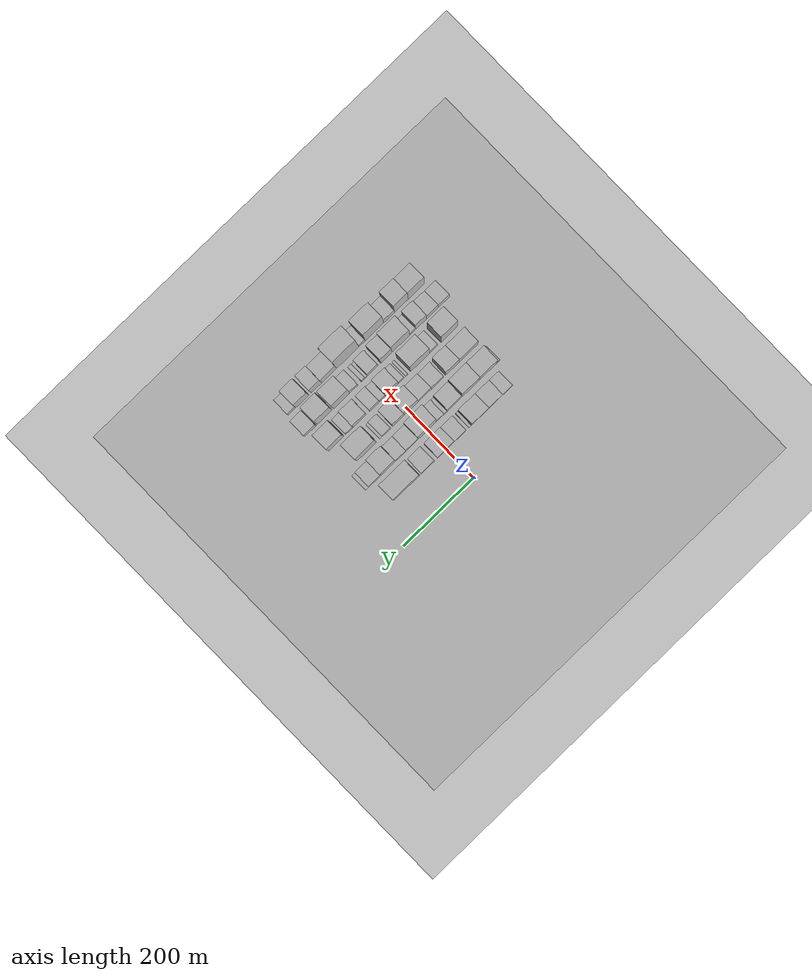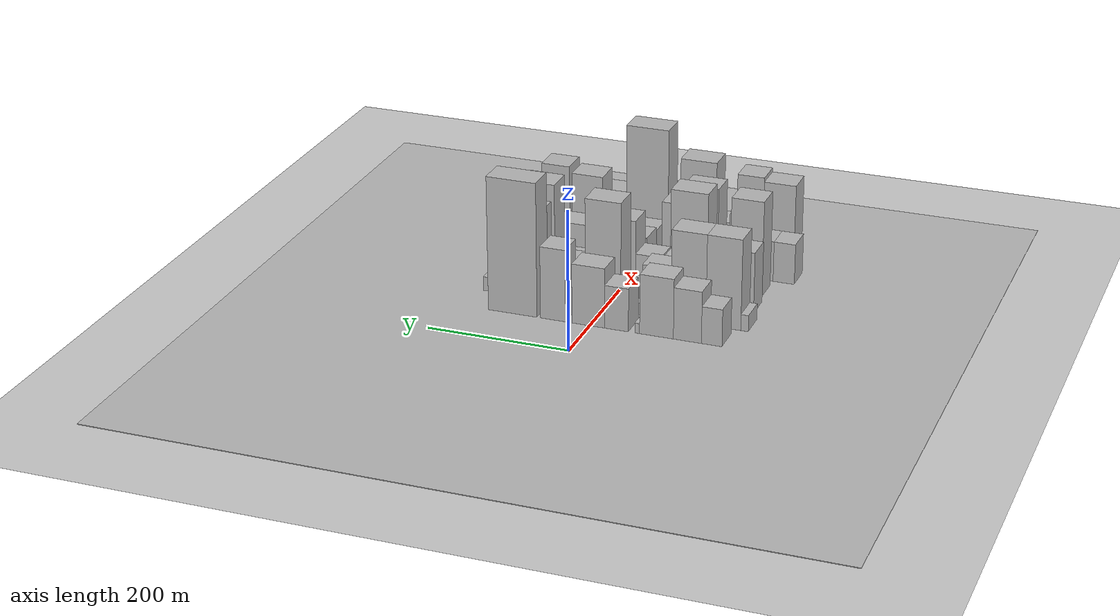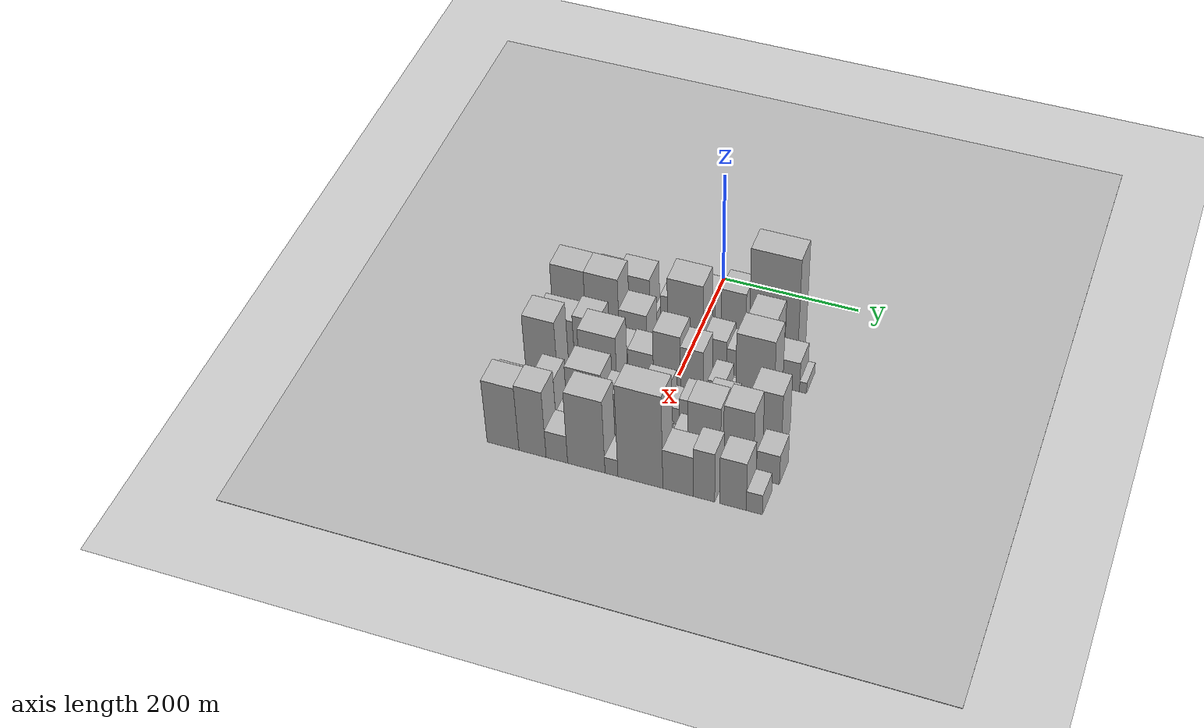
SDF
<sdf version="1.6">
 <world name="default">
  <include><name>ground_plane_1</name><uri>model://HANNAS_ground_plane</uri></include>
  <include>
   <name>ground_plane_2</name>
   <uri>model://HANNAS_ground_plane</uri>
   <pose>100 0 0  0 0 0</pose>
  </include>
  <model name="building_20">
   <static>1</static>
   <pose>100.0000 -170.7618 0 0.000000 0.000000 0.000000</pose>
   <link name="link">
    <pose>0 0 27.00 0 0 0</pose>
    <collision name="collision"><geometry><box><size>40.0000 28.4199 54.0000</size></box></geometry></collision>
    <visual name="visual">
     <cast_shadows>0</cast_shadows>
     <geometry><box><size>40.0000 28.4199 54.0000</size></box></geometry>
     <material>
      <script>
       <uri>model://HANNAS_wall/materials/scripts</uri>
       <uri>model://HANNAS_wall/materials/textures</uri>
       <name>vrc/HANNAS_wall</name>
      </script>
     </material>
    </visual>
   </link>
  </model>
  <model name="building_21">
   <static>1</static>
   <pose>100.0000 -137.1133 0 0.000000 0.000000 0.000000</pose>
   <link name="link">
    <pose>0 0 37.50 0 0 0</pose>
    <collision name="collision"><geometry><box><size>40.0000 38.8770 75.0000</size></box></geometry></collision>
    <visual name="visual">
     <cast_shadows>0</cast_shadows>
     <geometry><box><size>40.0000 38.8770 75.0000</size></box></geometry>
     <material>
      <script>
       <uri>model://HANNAS_wall/materials/scripts</uri>
       <uri>model://HANNAS_wall/materials/textures</uri>
       <name>vrc/HANNAS_wall</name>
      </script>
     </material>
    </visual>
   </link>
  </model>
  <model name="building_22">
   <static>1</static>
   <pose>100.0000 -93.9730 0 0.000000 0.000000 0.000000</pose>
   <link name="link">
    <pose>0 0 43.50 0 0 0</pose>
    <collision name="collision"><geometry><box><size>40.0000 47.4036 87.0000</size></box></geometry></collision>
    <visual name="visual">
     <cast_shadows>0</cast_shadows>
     <geometry><box><size>40.0000 47.4036 87.0000</size></box></geometry>
     <material>
      <script>
       <uri>model://HANNAS_wall/materials/scripts</uri>
       <uri>model://HANNAS_wall/materials/textures</uri>
       <name>vrc/HANNAS_wall</name>
      </script>
     </material>
    </visual>
   </link>
  </model>
  <model name="building_23">
   <static>1</static>
   <pose>100.0000 -66.9445 0 0.000000 0.000000 0.000000</pose>
   <link name="link">
    <pose>0 0 7.50 0 0 0</pose>
    <collision name="collision"><geometry><box><size>40.0000 6.6534 15.0000</size></box></geometry></collision>
    <visual name="visual">
     <cast_shadows>0</cast_shadows>
     <geometry><box><size>40.0000 6.6534 15.0000</size></box></geometry>
     <material>
      <script>
       <uri>model://HANNAS_wall/materials/scripts</uri>
       <uri>model://HANNAS_wall/materials/textures</uri>
       <name>vrc/HANNAS_wall</name>
      </script>
     </material>
    </visual>
   </link>
  </model>
  <model name="building_24">
   <static>1</static>
   <pose>100.0000 -37.7825 0 0.000000 0.000000 0.000000</pose>
   <link name="link">
    <pose>0 0 31.50 0 0 0</pose>
    <collision name="collision"><geometry><box><size>40.0000 33.6706 63.0000</size></box></geometry></collision>
    <visual name="visual">
     <cast_shadows>0</cast_shadows>
     <geometry><box><size>40.0000 33.6706 63.0000</size></box></geometry>
     <material>
      <script>
       <uri>model://HANNAS_wall/materials/scripts</uri>
       <uri>model://HANNAS_wall/materials/textures</uri>
       <name>vrc/HANNAS_wall</name>
      </script>
     </material>
    </visual>
   </link>
  </model>
  <model name="building_25">
   <static>1</static>
   <pose>100.0000 2.3220 0 0.000000 0.000000 0.000000</pose>
   <link name="link">
    <pose>0 0 43.50 0 0 0</pose>
    <collision name="collision"><geometry><box><size>40.0000 46.5383 87.0000</size></box></geometry></collision>
    <visual name="visual">
     <cast_shadows>0</cast_shadows>
     <geometry><box><size>40.0000 46.5383 87.0000</size></box></geometry>
     <material>
      <script>
       <uri>model://HANNAS_wall/materials/scripts</uri>
       <uri>model://HANNAS_wall/materials/textures</uri>
       <name>vrc/HANNAS_wall</name>
      </script>
     </material>
    </visual>
   </link>
  </model>
  <model name="building_26">
   <static>1</static>
   <pose>100.0000 52.6891 0 0.000000 0.000000 0.000000</pose>
   <link name="link">
    <pose>0 0 52.50 0 0 0</pose>
    <collision name="collision"><geometry><box><size>40.0000 36.1959 105.0000</size></box></geometry></collision>
    <visual name="visual">
     <cast_shadows>0</cast_shadows>
     <geometry><box><size>40.0000 36.1959 105.0000</size></box></geometry>
     <material>
      <script>
       <uri>model://HANNAS_wall/materials/scripts</uri>
       <uri>model://HANNAS_wall/materials/textures</uri>
       <name>vrc/HANNAS_wall</name>
      </script>
     </material>
    </visual>
   </link>
  </model>
  <model name="building_27">
   <static>1</static>
   <pose>100.0000 111.0224 0 0.000000 0.000000 0.000000</pose>
   <link name="link">
    <pose>0 0 97.50 0 0 0</pose>
    <collision name="collision"><geometry><box><size>40.0000 70.4707 195.0000</size></box></geometry></collision>
    <visual name="visual">
     <cast_shadows>0</cast_shadows>
     <geometry><box><size>40.0000 70.4707 195.0000</size></box></geometry>
     <material>
      <script>
       <uri>model://HANNAS_wall/materials/scripts</uri>
       <uri>model://HANNAS_wall/materials/textures</uri>
       <name>vrc/HANNAS_wall</name>
      </script>
     </material>
    </visual>
   </link>
  </model>
  <model name="building_75">
   <static>1</static>
   <pose>155.0000 -199.0048 0 0.000000 0.000000 0.000000</pose>
   <link name="link">
    <pose>0 0 12.00 0 0 0</pose>
    <collision name="collision"><geometry><box><size>40.0000 10.4964 24.0000</size></box></geometry></collision>
    <visual name="visual">
     <cast_shadows>0</cast_shadows>
     <geometry><box><size>40.0000 10.4964 24.0000</size></box></geometry>
     <material>
      <script>
       <uri>model://HANNAS_wall/materials/scripts</uri>
       <uri>model://HANNAS_wall/materials/textures</uri>
       <name>vrc/HANNAS_wall</name>
      </script>
     </material>
    </visual>
   </link>
  </model>
  <model name="building_76">
   <static>1</static>
   <pose>155.0000 -169.3473 0 0.000000 0.000000 0.000000</pose>
   <link name="link">
    <pose>0 0 66.00 0 0 0</pose>
    <collision name="collision"><geometry><box><size>40.0000 48.8188 132.0000</size></box></geometry></collision>
    <visual name="visual">
     <cast_shadows>0</cast_shadows>
     <geometry><box><size>40.0000 48.8188 132.0000</size></box></geometry>
     <material>
      <script>
       <uri>model://HANNAS_wall/materials/scripts</uri>
       <uri>model://HANNAS_wall/materials/textures</uri>
       <name>vrc/HANNAS_wall</name>
      </script>
     </material>
    </visual>
   </link>
  </model>
  <model name="building_77">
   <static>1</static>
   <pose>155.0000 -120.2626 0 0.000000 0.000000 0.000000</pose>
   <link name="link">
    <pose>0 0 66.00 0 0 0</pose>
    <collision name="collision"><geometry><box><size>40.0000 49.3506 132.0000</size></box></geometry></collision>
    <visual name="visual">
     <cast_shadows>0</cast_shadows>
     <geometry><box><size>40.0000 49.3506 132.0000</size></box></geometry>
     <material>
      <script>
       <uri>model://HANNAS_wall/materials/scripts</uri>
       <uri>model://HANNAS_wall/materials/textures</uri>
       <name>vrc/HANNAS_wall</name>
      </script>
     </material>
    </visual>
   </link>
  </model>
  <model name="building_78">
   <static>1</static>
   <pose>155.0000 -75.1745 0 0.000000 0.000000 0.000000</pose>
   <link name="link">
    <pose>0 0 37.50 0 0 0</pose>
    <collision name="collision"><geometry><box><size>40.0000 40.8256 75.0000</size></box></geometry></collision>
    <visual name="visual">
     <cast_shadows>0</cast_shadows>
     <geometry><box><size>40.0000 40.8256 75.0000</size></box></geometry>
     <material>
      <script>
       <uri>model://HANNAS_wall/materials/scripts</uri>
       <uri>model://HANNAS_wall/materials/textures</uri>
       <name>vrc/HANNAS_wall</name>
      </script>
     </material>
    </visual>
   </link>
  </model>
  <model name="building_79">
   <static>1</static>
   <pose>155.0000 -50.3389 0 0.000000 0.000000 0.000000</pose>
   <link name="link">
    <pose>0 0 9.00 0 0 0</pose>
    <collision name="collision"><geometry><box><size>40.0000 8.8457 18.0000</size></box></geometry></collision>
    <visual name="visual">
     <cast_shadows>0</cast_shadows>
     <geometry><box><size>40.0000 8.8457 18.0000</size></box></geometry>
     <material>
      <script>
       <uri>model://HANNAS_wall/materials/scripts</uri>
       <uri>model://HANNAS_wall/materials/textures</uri>
       <name>vrc/HANNAS_wall</name>
      </script>
     </material>
    </visual>
   </link>
  </model>
  <model name="building_80">
   <static>1</static>
   <pose>155.0000 -35.0040 0 0.000000 0.000000 0.000000</pose>
   <link name="link">
    <pose>0 0 19.50 0 0 0</pose>
    <collision name="collision"><geometry><box><size>40.0000 21.8240 39.0000</size></box></geometry></collision>
    <visual name="visual">
     <cast_shadows>0</cast_shadows>
     <geometry><box><size>40.0000 21.8240 39.0000</size></box></geometry>
     <material>
      <script>
       <uri>model://HANNAS_wall/materials/scripts</uri>
       <uri>model://HANNAS_wall/materials/textures</uri>
       <name>vrc/HANNAS_wall</name>
      </script>
     </material>
    </visual>
   </link>
  </model>
  <model name="building_81">
   <static>1</static>
   <pose>155.0000 1.4963 0 0.000000 0.000000 0.000000</pose>
   <link name="link">
    <pose>0 0 79.50 0 0 0</pose>
    <collision name="collision"><geometry><box><size>40.0000 51.1767 159.0000</size></box></geometry></collision>
    <visual name="visual">
     <cast_shadows>0</cast_shadows>
     <geometry><box><size>40.0000 51.1767 159.0000</size></box></geometry>
     <material>
      <script>
       <uri>model://HANNAS_wall/materials/scripts</uri>
       <uri>model://HANNAS_wall/materials/textures</uri>
       <name>vrc/HANNAS_wall</name>
      </script>
     </material>
    </visual>
   </link>
  </model>
  <model name="building_82">
   <static>1</static>
   <pose>155.0000 44.1281 0 0.000000 0.000000 0.000000</pose>
   <link name="link">
    <pose>0 0 31.50 0 0 0</pose>
    <collision name="collision"><geometry><box><size>40.0000 34.0868 63.0000</size></box></geometry></collision>
    <visual name="visual">
     <cast_shadows>0</cast_shadows>
     <geometry><box><size>40.0000 34.0868 63.0000</size></box></geometry>
     <material>
      <script>
       <uri>model://HANNAS_wall/materials/scripts</uri>
       <uri>model://HANNAS_wall/materials/textures</uri>
       <name>vrc/HANNAS_wall</name>
      </script>
     </material>
    </visual>
   </link>
  </model>
  <model name="building_83">
   <static>1</static>
   <pose>155.0000 75.9721 0 0.000000 0.000000 0.000000</pose>
   <link name="link">
    <pose>0 0 25.50 0 0 0</pose>
    <collision name="collision"><geometry><box><size>40.0000 29.6012 51.0000</size></box></geometry></collision>
    <visual name="visual">
     <cast_shadows>0</cast_shadows>
     <geometry><box><size>40.0000 29.6012 51.0000</size></box></geometry>
     <material>
      <script>
       <uri>model://HANNAS_wall/materials/scripts</uri>
       <uri>model://HANNAS_wall/materials/textures</uri>
       <name>vrc/HANNAS_wall</name>
      </script>
     </material>
    </visual>
   </link>
  </model>
  <model name="building_84">
   <static>1</static>
   <pose>155.0000 111.1873 0 0.000000 0.000000 0.000000</pose>
   <link name="link">
    <pose>0 0 64.50 0 0 0</pose>
    <collision name="collision"><geometry><box><size>40.0000 40.8293 129.0000</size></box></geometry></collision>
    <visual name="visual">
     <cast_shadows>0</cast_shadows>
     <geometry><box><size>40.0000 40.8293 129.0000</size></box></geometry>
     <material>
      <script>
       <uri>model://HANNAS_wall/materials/scripts</uri>
       <uri>model://HANNAS_wall/materials/textures</uri>
       <name>vrc/HANNAS_wall</name>
      </script>
     </material>
    </visual>
   </link>
  </model>
  <model name="building_85">
   <static>1</static>
   <pose>155.0000 148.7007 0 0.000000 0.000000 0.000000</pose>
   <link name="link">
    <pose>0 0 28.50 0 0 0</pose>
    <collision name="collision"><geometry><box><size>40.0000 34.1975 57.0000</size></box></geometry></collision>
    <visual name="visual">
     <cast_shadows>0</cast_shadows>
     <geometry><box><size>40.0000 34.1975 57.0000</size></box></geometry>
     <material>
      <script>
       <uri>model://HANNAS_wall/materials/scripts</uri>
       <uri>model://HANNAS_wall/materials/textures</uri>
       <name>vrc/HANNAS_wall</name>
      </script>
     </material>
    </visual>
   </link>
  </model>
  <model name="building_86">
   <static>1</static>
   <pose>155.0000 170.8605 0 0.000000 0.000000 0.000000</pose>
   <link name="link">
    <pose>0 0 10.50 0 0 0</pose>
    <collision name="collision"><geometry><box><size>40.0000 10.1222 21.0000</size></box></geometry></collision>
    <visual name="visual">
     <cast_shadows>0</cast_shadows>
     <geometry><box><size>40.0000 10.1222 21.0000</size></box></geometry>
     <material>
      <script>
       <uri>model://HANNAS_wall/materials/scripts</uri>
       <uri>model://HANNAS_wall/materials/textures</uri>
       <name>vrc/HANNAS_wall</name>
      </script>
     </material>
    </visual>
   </link>
  </model>
  <model name="building_126">
   <static>1</static>
   <pose>210.0000 -168.0021 0 0.000000 0.000000 0.000000</pose>
   <link name="link">
    <pose>0 0 45.00 0 0 0</pose>
    <collision name="collision"><geometry><box><size>40.0000 53.4722 90.0000</size></box></geometry></collision>
    <visual name="visual">
     <cast_shadows>0</cast_shadows>
     <geometry><box><size>40.0000 53.4722 90.0000</size></box></geometry>
     <material>
      <script>
       <uri>model://HANNAS_wall/materials/scripts</uri>
       <uri>model://HANNAS_wall/materials/textures</uri>
       <name>vrc/HANNAS_wall</name>
      </script>
     </material>
    </visual>
   </link>
  </model>
  <model name="building_127">
   <static>1</static>
   <pose>210.0000 -122.7780 0 0.000000 0.000000 0.000000</pose>
   <link name="link">
    <pose>0 0 51.00 0 0 0</pose>
    <collision name="collision"><geometry><box><size>40.0000 36.9761 102.0000</size></box></geometry></collision>
    <visual name="visual">
     <cast_shadows>0</cast_shadows>
     <geometry><box><size>40.0000 36.9761 102.0000</size></box></geometry>
     <material>
      <script>
       <uri>model://HANNAS_wall/materials/scripts</uri>
       <uri>model://HANNAS_wall/materials/textures</uri>
       <name>vrc/HANNAS_wall</name>
      </script>
     </material>
    </visual>
   </link>
  </model>
  <model name="building_128">
   <static>1</static>
   <pose>210.0000 -80.1163 0 0.000000 0.000000 0.000000</pose>
   <link name="link">
    <pose>0 0 30.00 0 0 0</pose>
    <collision name="collision"><geometry><box><size>40.0000 34.3472 60.0000</size></box></geometry></collision>
    <visual name="visual">
     <cast_shadows>0</cast_shadows>
     <geometry><box><size>40.0000 34.3472 60.0000</size></box></geometry>
     <material>
      <script>
       <uri>model://HANNAS_wall/materials/scripts</uri>
       <uri>model://HANNAS_wall/materials/textures</uri>
       <name>vrc/HANNAS_wall</name>
      </script>
     </material>
    </visual>
   </link>
  </model>
  <model name="building_129">
   <static>1</static>
   <pose>210.0000 -44.4161 0 0.000000 0.000000 0.000000</pose>
   <link name="link">
    <pose>0 0 31.50 0 0 0</pose>
    <collision name="collision"><geometry><box><size>40.0000 37.0533 63.0000</size></box></geometry></collision>
    <visual name="visual">
     <cast_shadows>0</cast_shadows>
     <geometry><box><size>40.0000 37.0533 63.0000</size></box></geometry>
     <material>
      <script>
       <uri>model://HANNAS_wall/materials/scripts</uri>
       <uri>model://HANNAS_wall/materials/textures</uri>
       <name>vrc/HANNAS_wall</name>
      </script>
     </material>
    </visual>
   </link>
  </model>
  <model name="building_130">
   <static>1</static>
   <pose>210.0000 -6.4415 0 0.000000 0.000000 0.000000</pose>
   <link name="link">
    <pose>0 0 55.50 0 0 0</pose>
    <collision name="collision"><geometry><box><size>40.0000 38.8958 111.0000</size></box></geometry></collision>
    <visual name="visual">
     <cast_shadows>0</cast_shadows>
     <geometry><box><size>40.0000 38.8958 111.0000</size></box></geometry>
     <material>
      <script>
       <uri>model://HANNAS_wall/materials/scripts</uri>
       <uri>model://HANNAS_wall/materials/textures</uri>
       <name>vrc/HANNAS_wall</name>
      </script>
     </material>
    </visual>
   </link>
  </model>
  <model name="building_131">
   <static>1</static>
   <pose>210.0000 29.5271 0 0.000000 0.000000 0.000000</pose>
   <link name="link">
    <pose>0 0 46.50 0 0 0</pose>
    <collision name="collision"><geometry><box><size>40.0000 33.0415 93.0000</size></box></geometry></collision>
    <visual name="visual">
     <cast_shadows>0</cast_shadows>
     <geometry><box><size>40.0000 33.0415 93.0000</size></box></geometry>
     <material>
      <script>
       <uri>model://HANNAS_wall/materials/scripts</uri>
       <uri>model://HANNAS_wall/materials/textures</uri>
       <name>vrc/HANNAS_wall</name>
      </script>
     </material>
    </visual>
   </link>
  </model>
  <model name="building_132">
   <static>1</static>
   <pose>210.0000 64.2577 0 0.000000 0.000000 0.000000</pose>
   <link name="link">
    <pose>0 0 21.00 0 0 0</pose>
    <collision name="collision"><geometry><box><size>40.0000 24.4197 42.0000</size></box></geometry></collision>
    <visual name="visual">
     <cast_shadows>0</cast_shadows>
     <geometry><box><size>40.0000 24.4197 42.0000</size></box></geometry>
     <material>
      <script>
       <uri>model://HANNAS_wall/materials/scripts</uri>
       <uri>model://HANNAS_wall/materials/textures</uri>
       <name>vrc/HANNAS_wall</name>
      </script>
     </material>
    </visual>
   </link>
  </model>
  <model name="building_133">
   <static>1</static>
   <pose>210.0000 79.6754 0 0.000000 0.000000 0.000000</pose>
   <link name="link">
    <pose>0 0 7.50 0 0 0</pose>
    <collision name="collision"><geometry><box><size>40.0000 6.4158 15.0000</size></box></geometry></collision>
    <visual name="visual">
     <cast_shadows>0</cast_shadows>
     <geometry><box><size>40.0000 6.4158 15.0000</size></box></geometry>
     <material>
      <script>
       <uri>model://HANNAS_wall/materials/scripts</uri>
       <uri>model://HANNAS_wall/materials/textures</uri>
       <name>vrc/HANNAS_wall</name>
      </script>
     </material>
    </visual>
   </link>
  </model>
  <model name="building_134">
   <static>1</static>
   <pose>210.0000 118.9408 0 0.000000 0.000000 0.000000</pose>
   <link name="link">
    <pose>0 0 73.50 0 0 0</pose>
    <collision name="collision"><geometry><box><size>40.0000 54.1151 147.0000</size></box></geometry></collision>
    <visual name="visual">
     <cast_shadows>0</cast_shadows>
     <geometry><box><size>40.0000 54.1151 147.0000</size></box></geometry>
     <material>
      <script>
       <uri>model://HANNAS_wall/materials/scripts</uri>
       <uri>model://HANNAS_wall/materials/textures</uri>
       <name>vrc/HANNAS_wall</name>
      </script>
     </material>
    </visual>
   </link>
  </model>
  <model name="building_179">
   <static>1</static>
   <pose>265.0000 -166.8526 0 0.000000 0.000000 0.000000</pose>
   <link name="link">
    <pose>0 0 70.50 0 0 0</pose>
    <collision name="collision"><geometry><box><size>40.0000 45.9384 141.0000</size></box></geometry></collision>
    <visual name="visual">
     <cast_shadows>0</cast_shadows>
     <geometry><box><size>40.0000 45.9384 141.0000</size></box></geometry>
     <material>
      <script>
       <uri>model://HANNAS_wall/materials/scripts</uri>
       <uri>model://HANNAS_wall/materials/textures</uri>
       <name>vrc/HANNAS_wall</name>
      </script>
     </material>
    </visual>
   </link>
  </model>
  <model name="building_180">
   <static>1</static>
   <pose>265.0000 -122.5112 0 0.000000 0.000000 0.000000</pose>
   <link name="link">
    <pose>0 0 21.00 0 0 0</pose>
    <collision name="collision"><geometry><box><size>40.0000 22.7444 42.0000</size></box></geometry></collision>
    <visual name="visual">
     <cast_shadows>0</cast_shadows>
     <geometry><box><size>40.0000 22.7444 42.0000</size></box></geometry>
     <material>
      <script>
       <uri>model://HANNAS_wall/materials/scripts</uri>
       <uri>model://HANNAS_wall/materials/textures</uri>
       <name>vrc/HANNAS_wall</name>
      </script>
     </material>
    </visual>
   </link>
  </model>
  <model name="building_181">
   <static>1</static>
   <pose>265.0000 -84.4028 0 0.000000 0.000000 0.000000</pose>
   <link name="link">
    <pose>0 0 70.50 0 0 0</pose>
    <collision name="collision"><geometry><box><size>40.0000 53.4723 141.0000</size></box></geometry></collision>
    <visual name="visual">
     <cast_shadows>0</cast_shadows>
     <geometry><box><size>40.0000 53.4723 141.0000</size></box></geometry>
     <material>
      <script>
       <uri>model://HANNAS_wall/materials/scripts</uri>
       <uri>model://HANNAS_wall/materials/textures</uri>
       <name>vrc/HANNAS_wall</name>
      </script>
     </material>
    </visual>
   </link>
  </model>
  <model name="building_182">
   <static>1</static>
   <pose>265.0000 -46.6549 0 0.000000 0.000000 0.000000</pose>
   <link name="link">
    <pose>0 0 7.50 0 0 0</pose>
    <collision name="collision"><geometry><box><size>40.0000 6.0235 15.0000</size></box></geometry></collision>
    <visual name="visual">
     <cast_shadows>0</cast_shadows>
     <geometry><box><size>40.0000 6.0235 15.0000</size></box></geometry>
     <material>
      <script>
       <uri>model://HANNAS_wall/materials/scripts</uri>
       <uri>model://HANNAS_wall/materials/textures</uri>
       <name>vrc/HANNAS_wall</name>
      </script>
     </material>
    </visual>
   </link>
  </model>
  <model name="building_183">
   <static>1</static>
   <pose>265.0000 -31.0385 0 0.000000 0.000000 0.000000</pose>
   <link name="link">
    <pose>0 0 15.00 0 0 0</pose>
    <collision name="collision"><geometry><box><size>40.0000 15.2093 30.0000</size></box></geometry></collision>
    <visual name="visual">
     <cast_shadows>0</cast_shadows>
     <geometry><box><size>40.0000 15.2093 30.0000</size></box></geometry>
     <material>
      <script>
       <uri>model://HANNAS_wall/materials/scripts</uri>
       <uri>model://HANNAS_wall/materials/textures</uri>
       <name>vrc/HANNAS_wall</name>
      </script>
     </material>
    </visual>
   </link>
  </model>
  <model name="building_184">
   <static>1</static>
   <pose>265.0000 -5.1891 0 0.000000 0.000000 0.000000</pose>
   <link name="link">
    <pose>0 0 31.50 0 0 0</pose>
    <collision name="collision"><geometry><box><size>40.0000 36.4895 63.0000</size></box></geometry></collision>
    <visual name="visual">
     <cast_shadows>0</cast_shadows>
     <geometry><box><size>40.0000 36.4895 63.0000</size></box></geometry>
     <material>
      <script>
       <uri>model://HANNAS_wall/materials/scripts</uri>
       <uri>model://HANNAS_wall/materials/textures</uri>
       <name>vrc/HANNAS_wall</name>
      </script>
     </material>
    </visual>
   </link>
  </model>
  <model name="building_185">
   <static>1</static>
   <pose>265.0000 21.7609 0 0.000000 0.000000 0.000000</pose>
   <link name="link">
    <pose>0 0 16.50 0 0 0</pose>
    <collision name="collision"><geometry><box><size>40.0000 17.4106 33.0000</size></box></geometry></collision>
    <visual name="visual">
     <cast_shadows>0</cast_shadows>
     <geometry><box><size>40.0000 17.4106 33.0000</size></box></geometry>
     <material>
      <script>
       <uri>model://HANNAS_wall/materials/scripts</uri>
       <uri>model://HANNAS_wall/materials/textures</uri>
       <name>vrc/HANNAS_wall</name>
      </script>
     </material>
    </visual>
   </link>
  </model>
  <model name="building_186">
   <static>1</static>
   <pose>265.0000 44.4107 0 0.000000 0.000000 0.000000</pose>
   <link name="link">
    <pose>0 0 27.00 0 0 0</pose>
    <collision name="collision"><geometry><box><size>40.0000 27.8890 54.0000</size></box></geometry></collision>
    <visual name="visual">
     <cast_shadows>0</cast_shadows>
     <geometry><box><size>40.0000 27.8890 54.0000</size></box></geometry>
     <material>
      <script>
       <uri>model://HANNAS_wall/materials/scripts</uri>
       <uri>model://HANNAS_wall/materials/textures</uri>
       <name>vrc/HANNAS_wall</name>
      </script>
     </material>
    </visual>
   </link>
  </model>
  <model name="building_187">
   <static>1</static>
   <pose>265.0000 86.1586 0 0.000000 0.000000 0.000000</pose>
   <link name="link">
    <pose>0 0 34.50 0 0 0</pose>
    <collision name="collision"><geometry><box><size>40.0000 37.6067 69.0000</size></box></geometry></collision>
    <visual name="visual">
     <cast_shadows>0</cast_shadows>
     <geometry><box><size>40.0000 37.6067 69.0000</size></box></geometry>
     <material>
      <script>
       <uri>model://HANNAS_wall/materials/scripts</uri>
       <uri>model://HANNAS_wall/materials/textures</uri>
       <name>vrc/HANNAS_wall</name>
      </script>
     </material>
    </visual>
   </link>
  </model>
  <model name="building_188">
   <static>1</static>
   <pose>265.0000 115.6427 0 0.000000 0.000000 0.000000</pose>
   <link name="link">
    <pose>0 0 19.50 0 0 0</pose>
    <collision name="collision"><geometry><box><size>40.0000 21.3615 39.0000</size></box></geometry></collision>
    <visual name="visual">
     <cast_shadows>0</cast_shadows>
     <geometry><box><size>40.0000 21.3615 39.0000</size></box></geometry>
     <material>
      <script>
       <uri>model://HANNAS_wall/materials/scripts</uri>
       <uri>model://HANNAS_wall/materials/textures</uri>
       <name>vrc/HANNAS_wall</name>
      </script>
     </material>
    </visual>
   </link>
  </model>
  <model name="building_189">
   <static>1</static>
   <pose>265.0000 152.6652 0 0.000000 0.000000 0.000000</pose>
   <link name="link">
    <pose>0 0 55.50 0 0 0</pose>
    <collision name="collision"><geometry><box><size>40.0000 42.6836 111.0000</size></box></geometry></collision>
    <visual name="visual">
     <cast_shadows>0</cast_shadows>
     <geometry><box><size>40.0000 42.6836 111.0000</size></box></geometry>
     <material>
      <script>
       <uri>model://HANNAS_wall/materials/scripts</uri>
       <uri>model://HANNAS_wall/materials/textures</uri>
       <name>vrc/HANNAS_wall</name>
      </script>
     </material>
    </visual>
   </link>
  </model>
  <model name="building_228">
   <static>1</static>
   <pose>320.0000 -204.8932 0 0.000000 0.000000 0.000000</pose>
   <link name="link">
    <pose>0 0 30.00 0 0 0</pose>
    <collision name="collision"><geometry><box><size>40.0000 30.6098 60.0000</size></box></geometry></collision>
    <visual name="visual">
     <cast_shadows>0</cast_shadows>
     <geometry><box><size>40.0000 30.6098 60.0000</size></box></geometry>
     <material>
      <script>
       <uri>model://HANNAS_wall/materials/scripts</uri>
       <uri>model://HANNAS_wall/materials/textures</uri>
       <name>vrc/HANNAS_wall</name>
      </script>
     </material>
    </visual>
   </link>
  </model>
  <model name="building_229">
   <static>1</static>
   <pose>320.0000 -172.9880 0 0.000000 0.000000 0.000000</pose>
   <link name="link">
    <pose>0 0 30.00 0 0 0</pose>
    <collision name="collision"><geometry><box><size>40.0000 33.2007 60.0000</size></box></geometry></collision>
    <visual name="visual">
     <cast_shadows>0</cast_shadows>
     <geometry><box><size>40.0000 33.2007 60.0000</size></box></geometry>
     <material>
      <script>
       <uri>model://HANNAS_wall/materials/scripts</uri>
       <uri>model://HANNAS_wall/materials/textures</uri>
       <name>vrc/HANNAS_wall</name>
      </script>
     </material>
    </visual>
   </link>
  </model>
  <model name="building_230">
   <static>1</static>
   <pose>320.0000 -140.9349 0 0.000000 0.000000 0.000000</pose>
   <link name="link">
    <pose>0 0 46.50 0 0 0</pose>
    <collision name="collision"><geometry><box><size>40.0000 30.9055 93.0000</size></box></geometry></collision>
    <visual name="visual">
     <cast_shadows>0</cast_shadows>
     <geometry><box><size>40.0000 30.9055 93.0000</size></box></geometry>
     <material>
      <script>
       <uri>model://HANNAS_wall/materials/scripts</uri>
       <uri>model://HANNAS_wall/materials/textures</uri>
       <name>vrc/HANNAS_wall</name>
      </script>
     </material>
    </visual>
   </link>
  </model>
  <model name="building_231">
   <static>1</static>
   <pose>320.0000 -116.9829 0 0.000000 0.000000 0.000000</pose>
   <link name="link">
    <pose>0 0 15.00 0 0 0</pose>
    <collision name="collision"><geometry><box><size>40.0000 16.9985 30.0000</size></box></geometry></collision>
    <visual name="visual">
     <cast_shadows>0</cast_shadows>
     <geometry><box><size>40.0000 16.9985 30.0000</size></box></geometry>
     <material>
      <script>
       <uri>model://HANNAS_wall/materials/scripts</uri>
       <uri>model://HANNAS_wall/materials/textures</uri>
       <name>vrc/HANNAS_wall</name>
      </script>
     </material>
    </visual>
   </link>
  </model>
  <model name="building_232">
   <static>1</static>
   <pose>320.0000 -83.4259 0 0.000000 0.000000 0.000000</pose>
   <link name="link">
    <pose>0 0 63.00 0 0 0</pose>
    <collision name="collision"><geometry><box><size>40.0000 50.1154 126.0000</size></box></geometry></collision>
    <visual name="visual">
     <cast_shadows>0</cast_shadows>
     <geometry><box><size>40.0000 50.1154 126.0000</size></box></geometry>
     <material>
      <script>
       <uri>model://HANNAS_wall/materials/scripts</uri>
       <uri>model://HANNAS_wall/materials/textures</uri>
       <name>vrc/HANNAS_wall</name>
      </script>
     </material>
    </visual>
   </link>
  </model>
  <model name="building_233">
   <static>1</static>
   <pose>320.0000 -42.4559 0 0.000000 0.000000 0.000000</pose>
   <link name="link">
    <pose>0 0 48.00 0 0 0</pose>
    <collision name="collision"><geometry><box><size>40.0000 31.8246 96.0000</size></box></geometry></collision>
    <visual name="visual">
     <cast_shadows>0</cast_shadows>
     <geometry><box><size>40.0000 31.8246 96.0000</size></box></geometry>
     <material>
      <script>
       <uri>model://HANNAS_wall/materials/scripts</uri>
       <uri>model://HANNAS_wall/materials/textures</uri>
       <name>vrc/HANNAS_wall</name>
      </script>
     </material>
    </visual>
   </link>
  </model>
  <model name="building_234">
   <static>1</static>
   <pose>320.0000 -3.4596 0 0.000000 0.000000 0.000000</pose>
   <link name="link">
    <pose>0 0 25.50 0 0 0</pose>
    <collision name="collision"><geometry><box><size>40.0000 30.1680 51.0000</size></box></geometry></collision>
    <visual name="visual">
     <cast_shadows>0</cast_shadows>
     <geometry><box><size>40.0000 30.1680 51.0000</size></box></geometry>
     <material>
      <script>
       <uri>model://HANNAS_wall/materials/scripts</uri>
       <uri>model://HANNAS_wall/materials/textures</uri>
       <name>vrc/HANNAS_wall</name>
      </script>
     </material>
    </visual>
   </link>
  </model>
  <model name="building_235">
   <static>1</static>
   <pose>320.0000 14.9809 0 0.000000 0.000000 0.000000</pose>
   <link name="link">
    <pose>0 0 7.50 0 0 0</pose>
    <collision name="collision"><geometry><box><size>40.0000 6.7131 15.0000</size></box></geometry></collision>
    <visual name="visual">
     <cast_shadows>0</cast_shadows>
     <geometry><box><size>40.0000 6.7131 15.0000</size></box></geometry>
     <material>
      <script>
       <uri>model://HANNAS_wall/materials/scripts</uri>
       <uri>model://HANNAS_wall/materials/textures</uri>
       <name>vrc/HANNAS_wall</name>
      </script>
     </material>
    </visual>
   </link>
  </model>
  <model name="building_236">
   <static>1</static>
   <pose>320.0000 23.2685 0 0.000000 0.000000 0.000000</pose>
   <link name="link">
    <pose>0 0 12.00 0 0 0</pose>
    <collision name="collision"><geometry><box><size>40.0000 9.8621 24.0000</size></box></geometry></collision>
    <visual name="visual">
     <cast_shadows>0</cast_shadows>
     <geometry><box><size>40.0000 9.8621 24.0000</size></box></geometry>
     <material>
      <script>
       <uri>model://HANNAS_wall/materials/scripts</uri>
       <uri>model://HANNAS_wall/materials/textures</uri>
       <name>vrc/HANNAS_wall</name>
      </script>
     </material>
    </visual>
   </link>
  </model>
  <model name="building_237">
   <static>1</static>
   <pose>320.0000 49.8123 0 0.000000 0.000000 0.000000</pose>
   <link name="link">
    <pose>0 0 22.50 0 0 0</pose>
    <collision name="collision"><geometry><box><size>40.0000 23.2254 45.0000</size></box></geometry></collision>
    <visual name="visual">
     <cast_shadows>0</cast_shadows>
     <geometry><box><size>40.0000 23.2254 45.0000</size></box></geometry>
     <material>
      <script>
       <uri>model://HANNAS_wall/materials/scripts</uri>
       <uri>model://HANNAS_wall/materials/textures</uri>
       <name>vrc/HANNAS_wall</name>
      </script>
     </material>
    </visual>
   </link>
  </model>
  <model name="building_238">
   <static>1</static>
   <pose>320.0000 84.2321 0 0.000000 0.000000 0.000000</pose>
   <link name="link">
    <pose>0 0 60.00 0 0 0</pose>
    <collision name="collision"><geometry><box><size>40.0000 45.6142 120.0000</size></box></geometry></collision>
    <visual name="visual">
     <cast_shadows>0</cast_shadows>
     <geometry><box><size>40.0000 45.6142 120.0000</size></box></geometry>
     <material>
      <script>
       <uri>model://HANNAS_wall/materials/scripts</uri>
       <uri>model://HANNAS_wall/materials/textures</uri>
       <name>vrc/HANNAS_wall</name>
      </script>
     </material>
    </visual>
   </link>
  </model>
  <model name="building_239">
   <static>1</static>
   <pose>320.0000 131.8322 0 0.000000 0.000000 0.000000</pose>
   <link name="link">
    <pose>0 0 64.50 0 0 0</pose>
    <collision name="collision"><geometry><box><size>40.0000 41.5860 129.0000</size></box></geometry></collision>
    <visual name="visual">
     <cast_shadows>0</cast_shadows>
     <geometry><box><size>40.0000 41.5860 129.0000</size></box></geometry>
     <material>
      <script>
       <uri>model://HANNAS_wall/materials/scripts</uri>
       <uri>model://HANNAS_wall/materials/textures</uri>
       <name>vrc/HANNAS_wall</name>
      </script>
     </material>
    </visual>
   </link>
  </model>
  <model name="building_240">
   <static>1</static>
   <pose>320.0000 172.5066 0 0.000000 0.000000 0.000000</pose>
   <link name="link">
    <pose>0 0 28.50 0 0 0</pose>
    <collision name="collision"><geometry><box><size>40.0000 31.7628 57.0000</size></box></geometry></collision>
    <visual name="visual">
     <cast_shadows>0</cast_shadows>
     <geometry><box><size>40.0000 31.7628 57.0000</size></box></geometry>
     <material>
      <script>
       <uri>model://HANNAS_wall/materials/scripts</uri>
       <uri>model://HANNAS_wall/materials/textures</uri>
       <name>vrc/HANNAS_wall</name>
      </script>
     </material>
    </visual>
   </link>
  </model>
  <model name="building_283">
   <static>1</static>
   <pose>375.0000 -180.3644 0 0.000000 0.000000 0.000000</pose>
   <link name="link">
    <pose>0 0 61.50 0 0 0</pose>
    <collision name="collision"><geometry><box><size>40.0000 45.7927 123.0000</size></box></geometry></collision>
    <visual name="visual">
     <cast_shadows>0</cast_shadows>
     <geometry><box><size>40.0000 45.7927 123.0000</size></box></geometry>
     <material>
      <script>
       <uri>model://HANNAS_wall/materials/scripts</uri>
       <uri>model://HANNAS_wall/materials/textures</uri>
       <name>vrc/HANNAS_wall</name>
      </script>
     </material>
    </visual>
   </link>
  </model>
  <model name="building_284">
   <static>1</static>
   <pose>375.0000 -138.0692 0 0.000000 0.000000 0.000000</pose>
   <link name="link">
    <pose>0 0 64.50 0 0 0</pose>
    <collision name="collision"><geometry><box><size>40.0000 38.7976 129.0000</size></box></geometry></collision>
    <visual name="visual">
     <cast_shadows>0</cast_shadows>
     <geometry><box><size>40.0000 38.7976 129.0000</size></box></geometry>
     <material>
      <script>
       <uri>model://HANNAS_wall/materials/scripts</uri>
       <uri>model://HANNAS_wall/materials/textures</uri>
       <name>vrc/HANNAS_wall</name>
      </script>
     </material>
    </visual>
   </link>
  </model>
  <model name="building_285">
   <static>1</static>
   <pose>375.0000 -103.3862 0 0.000000 0.000000 0.000000</pose>
   <link name="link">
    <pose>0 0 27.00 0 0 0</pose>
    <collision name="collision"><geometry><box><size>40.0000 30.5684 54.0000</size></box></geometry></collision>
    <visual name="visual">
     <cast_shadows>0</cast_shadows>
     <geometry><box><size>40.0000 30.5684 54.0000</size></box></geometry>
     <material>
      <script>
       <uri>model://HANNAS_wall/materials/scripts</uri>
       <uri>model://HANNAS_wall/materials/textures</uri>
       <name>vrc/HANNAS_wall</name>
      </script>
     </material>
    </visual>
   </link>
  </model>
  <model name="building_286">
   <static>1</static>
   <pose>375.0000 -61.6658 0 0.000000 0.000000 0.000000</pose>
   <link name="link">
    <pose>0 0 70.50 0 0 0</pose>
    <collision name="collision"><geometry><box><size>40.0000 52.8725 141.0000</size></box></geometry></collision>
    <visual name="visual">
     <cast_shadows>0</cast_shadows>
     <geometry><box><size>40.0000 52.8725 141.0000</size></box></geometry>
     <material>
      <script>
       <uri>model://HANNAS_wall/materials/scripts</uri>
       <uri>model://HANNAS_wall/materials/textures</uri>
       <name>vrc/HANNAS_wall</name>
      </script>
     </material>
    </visual>
   </link>
  </model>
  <model name="building_287">
   <static>1</static>
   <pose>375.0000 -26.1765 0 0.000000 0.000000 0.000000</pose>
   <link name="link">
    <pose>0 0 16.50 0 0 0</pose>
    <collision name="collision"><geometry><box><size>40.0000 18.1060 33.0000</size></box></geometry></collision>
    <visual name="visual">
     <cast_shadows>0</cast_shadows>
     <geometry><box><size>40.0000 18.1060 33.0000</size></box></geometry>
     <material>
      <script>
       <uri>model://HANNAS_wall/materials/scripts</uri>
       <uri>model://HANNAS_wall/materials/textures</uri>
       <name>vrc/HANNAS_wall</name>
      </script>
     </material>
    </visual>
   </link>
  </model>
  <model name="building_288">
   <static>1</static>
   <pose>375.0000 14.2456 0 0.000000 0.000000 0.000000</pose>
   <link name="link">
    <pose>0 0 90.00 0 0 0</pose>
    <collision name="collision"><geometry><box><size>40.0000 62.7382 180.0000</size></box></geometry></collision>
    <visual name="visual">
     <cast_shadows>0</cast_shadows>
     <geometry><box><size>40.0000 62.7382 180.0000</size></box></geometry>
     <material>
      <script>
       <uri>model://HANNAS_wall/materials/scripts</uri>
       <uri>model://HANNAS_wall/materials/textures</uri>
       <name>vrc/HANNAS_wall</name>
      </script>
     </material>
    </visual>
   </link>
  </model>
  <model name="building_289">
   <static>1</static>
   <pose>375.0000 66.6925 0 0.000000 0.000000 0.000000</pose>
   <link name="link">
    <pose>0 0 39.00 0 0 0</pose>
    <collision name="collision"><geometry><box><size>40.0000 42.1555 78.0000</size></box></geometry></collision>
    <visual name="visual">
     <cast_shadows>0</cast_shadows>
     <geometry><box><size>40.0000 42.1555 78.0000</size></box></geometry>
     <material>
      <script>
       <uri>model://HANNAS_wall/materials/scripts</uri>
       <uri>model://HANNAS_wall/materials/textures</uri>
       <name>vrc/HANNAS_wall</name>
      </script>
     </material>
    </visual>
   </link>
  </model>
  <model name="building_290">
   <static>1</static>
   <pose>375.0000 102.4903 0 0.000000 0.000000 0.000000</pose>
   <link name="link">
    <pose>0 0 48.00 0 0 0</pose>
    <collision name="collision"><geometry><box><size>40.0000 29.4401 96.0000</size></box></geometry></collision>
    <visual name="visual">
     <cast_shadows>0</cast_shadows>
     <geometry><box><size>40.0000 29.4401 96.0000</size></box></geometry>
     <material>
      <script>
       <uri>model://HANNAS_wall/materials/scripts</uri>
       <uri>model://HANNAS_wall/materials/textures</uri>
       <name>vrc/HANNAS_wall</name>
      </script>
     </material>
    </visual>
   </link>
  </model>
  <model name="building_291">
   <static>1</static>
   <pose>375.0000 142.3190 0 0.000000 0.000000 0.000000</pose>
   <link name="link">
    <pose>0 0 46.50 0 0 0</pose>
    <collision name="collision"><geometry><box><size>40.0000 36.2173 93.0000</size></box></geometry></collision>
    <visual name="visual">
     <cast_shadows>0</cast_shadows>
     <geometry><box><size>40.0000 36.2173 93.0000</size></box></geometry>
     <material>
      <script>
       <uri>model://HANNAS_wall/materials/scripts</uri>
       <uri>model://HANNAS_wall/materials/textures</uri>
       <name>vrc/HANNAS_wall</name>
      </script>
     </material>
    </visual>
   </link>
  </model>
  <model name="building_292">
   <static>1</static>
   <pose>375.0000 171.5172 0 0.000000 0.000000 0.000000</pose>
   <link name="link">
    <pose>0 0 19.50 0 0 0</pose>
    <collision name="collision"><geometry><box><size>40.0000 22.1791 39.0000</size></box></geometry></collision>
    <visual name="visual">
     <cast_shadows>0</cast_shadows>
     <geometry><box><size>40.0000 22.1791 39.0000</size></box></geometry>
     <material>
      <script>
       <uri>model://HANNAS_wall/materials/scripts</uri>
       <uri>model://HANNAS_wall/materials/textures</uri>
       <name>vrc/HANNAS_wall</name>
      </script>
     </material>
    </visual>
   </link>
  </model>
 </world>
</sdf>
